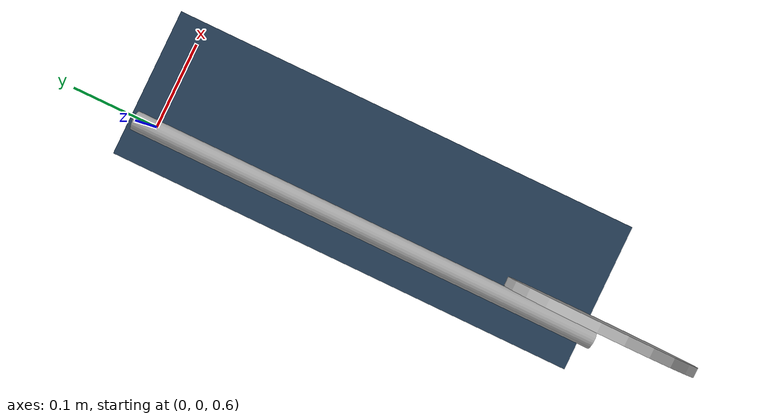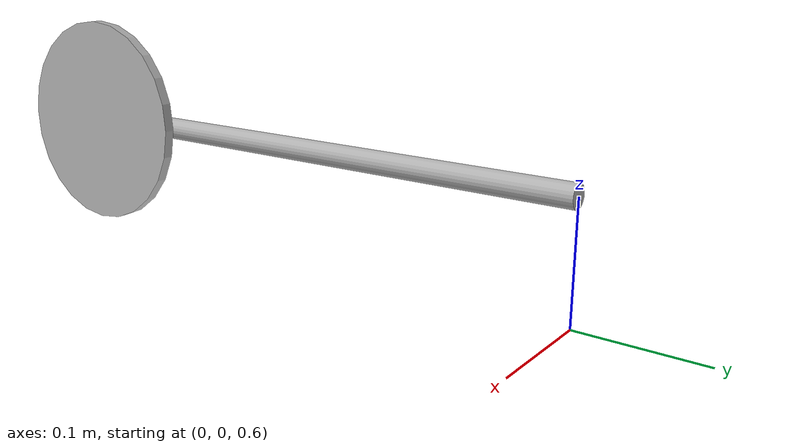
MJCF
<mujoco model="momentum_pendulum">
    <option timestep="0.005" wind="0.1 0.1 0">
      <flag energy="enable"/>
    </option>
      <size njmax="50" nconmax="10" nstack="200"/>
      <visual>
        <rgba haze=".3 .3 .3 1"/>
        <global offwidth="2560" offheight="1440" elevation="-20" azimuth="120"/>
      </visual>

    <asset>
      <texture type="skybox" builtin="gradient" rgb1="0.4 0.6 0.8" rgb2="0 0 0" width="32" height="512"/>
      <texture name="grid" type="2d" builtin="checker" rgb1="0.2 0.3 0.4" rgb2="0.1 0.2 0.3" width="512" height="512"/>
      <material name="grid" texture="grid" texrepeat="1 1" texuniform="true" reflectance="0.2"/>
    </asset>
    <worldbody>
      <geom name="floor" size="0 0 0.01" type="plane" material="grid" condim="1"/>
      <light name="floorlight" mode="fixed" pos="0 0 50" dir="0 0 -1" diffuse="0.8 0.8 0.8" specular="0.3 0.3 0.3"/>
      <body name="rod" pos="0 0 0.7" euler="90 0 0">
        <geom type="cylinder" size="0.01" fromto="0 0 0 0 0 0.50" rgba="0.7 0.7 0.7 1" mass="0.1"/>
        <joint name="rod_body_joint_X" type="hinge" axis="1 0 0"/>
        <body name="wheel" pos="0.01 0 0.5">
          <geom type="cylinder" size="0.1" fromto="0 0 0 0.01 0 0" rgba="0.7 0.7 0.7 1" mass="0.05"/>
          <joint name="wheel_body_joint_X" type="hinge" axis="1 0 0"/>
        </body>
      </body>
    </worldbody>
    <keyframe>
      <key name="start" qpos="-1.50 0"/>
    </keyframe>
    <actuator>
      <general joint="wheel_body_joint_X" biasprm="0.1" biastype="affine"/>
    </actuator>
  </mujoco>
